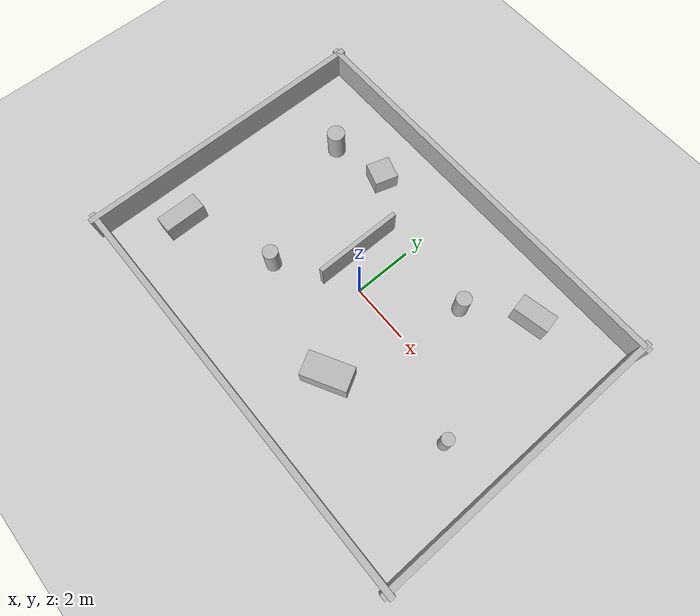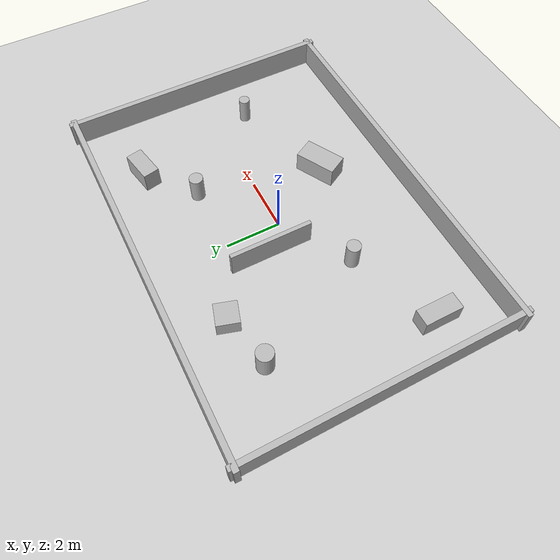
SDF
<?xml version="1.0" ?>
<sdf version="1.6">
  <world name="patrol">
    <include>
      <uri>model://sun</uri>
    </include>
    <include>
      <uri>model://ground_plane</uri>
    </include>

    <!-- 四周围墙 14m x 10m（长方形，破掉正方形旋转对称性，利于 AMCL） -->
    <model name="wall_n">
      <static>true</static>
      <pose>0 5 0.5 0 0 0</pose>
      <link name="link">
        <collision name="c"><geometry><box><size>14.4 0.2 1.0</size></box></geometry></collision>
        <visual name="v"><geometry><box><size>14.4 0.2 1.0</size></box></geometry></visual>
      </link>
    </model>
    <model name="wall_s">
      <static>true</static>
      <pose>0 -5 0.5 0 0 0</pose>
      <link name="link">
        <collision name="c"><geometry><box><size>14.4 0.2 1.0</size></box></geometry></collision>
        <visual name="v"><geometry><box><size>14.4 0.2 1.0</size></box></geometry></visual>
      </link>
    </model>
    <model name="wall_e">
      <static>true</static>
      <pose>7 0 0.5 0 0 0</pose>
      <link name="link">
        <collision name="c"><geometry><box><size>0.2 10.4 1.0</size></box></geometry></collision>
        <visual name="v"><geometry><box><size>0.2 10.4 1.0</size></box></geometry></visual>
      </link>
    </model>
    <model name="wall_w">
      <static>true</static>
      <pose>-7 0 0.5 0 0 0</pose>
      <link name="link">
        <collision name="c"><geometry><box><size>0.2 10.4 1.0</size></box></geometry></collision>
        <visual name="v"><geometry><box><size>0.2 10.4 1.0</size></box></geometry></visual>
      </link>
    </model>

    <!-- 内部隔断墙（L 型特征，强定位参照物） -->
    <model name="inner_wall">
      <static>true</static>
      <pose>-1.0 0.8 0.5 0 0 0</pose>
      <link name="link">
        <collision name="c"><geometry><box><size>0.15 3.0 1.0</size></box></geometry></collision>
        <visual name="v"><geometry><box><size>0.15 3.0 1.0</size></box></geometry></visual>
      </link>
    </model>

    <!-- 场内障碍：柱子与箱子（不对称分布，给扫描匹配更多特征） -->
    <model name="pillar_1">
      <static>true</static>
      <pose>2.5 2.0 0.5 0 0 0</pose>
      <link name="link">
        <collision name="c"><geometry><cylinder><radius>0.25</radius><length>1.0</length></cylinder></geometry></collision>
        <visual name="v"><geometry><cylinder><radius>0.25</radius><length>1.0</length></cylinder></geometry></visual>
      </link>
    </model>
    <model name="pillar_2">
      <static>true</static>
      <pose>-2.5 -1.5 0.5 0 0 0</pose>
      <link name="link">
        <collision name="c"><geometry><cylinder><radius>0.25</radius><length>1.0</length></cylinder></geometry></collision>
        <visual name="v"><geometry><cylinder><radius>0.25</radius><length>1.0</length></cylinder></geometry></visual>
      </link>
    </model>
    <model name="pillar_3">
      <static>true</static>
      <pose>-4.5 2.8 0.5 0 0 0</pose>
      <link name="link">
        <collision name="c"><geometry><cylinder><radius>0.3</radius><length>1.0</length></cylinder></geometry></collision>
        <visual name="v"><geometry><cylinder><radius>0.3</radius><length>1.0</length></cylinder></geometry></visual>
      </link>
    </model>
    <model name="pillar_4">
      <static>true</static>
      <pose>5.2 -1.2 0.5 0 0 0</pose>
      <link name="link">
        <collision name="c"><geometry><cylinder><radius>0.2</radius><length>1.0</length></cylinder></geometry></collision>
        <visual name="v"><geometry><cylinder><radius>0.2</radius><length>1.0</length></cylinder></geometry></visual>
      </link>
    </model>
    <model name="box_1">
      <static>true</static>
      <pose>1.5 -2.5 0.4 0 0 0.5</pose>
      <link name="link">
        <collision name="c"><geometry><box><size>1.5 0.8 0.8</size></box></geometry></collision>
        <visual name="v"><geometry><box><size>1.5 0.8 0.8</size></box></geometry></visual>
      </link>
    </model>
    <model name="box_2">
      <static>true</static>
      <pose>-2.6 3.2 0.3 0 0 -0.3</pose>
      <link name="link">
        <collision name="c"><geometry><box><size>0.8 0.8 0.6</size></box></geometry></collision>
        <visual name="v"><geometry><box><size>0.8 0.8 0.6</size></box></geometry></visual>
      </link>
    </model>
    <model name="box_3">
      <static>true</static>
      <pose>4.2 3.4 0.4 0 0 0.2</pose>
      <link name="link">
        <collision name="c"><geometry><box><size>1.2 0.6 0.8</size></box></geometry></collision>
        <visual name="v"><geometry><box><size>1.2 0.6 0.8</size></box></geometry></visual>
      </link>
    </model>
    <model name="box_4">
      <static>true</static>
      <pose>-5.6 -2.8 0.35 0 0 0</pose>
      <link name="link">
        <collision name="c"><geometry><box><size>0.6 1.4 0.7</size></box></geometry></collision>
        <visual name="v"><geometry><box><size>0.6 1.4 0.7</size></box></geometry></visual>
      </link>
    </model>
  </world>
</sdf>
